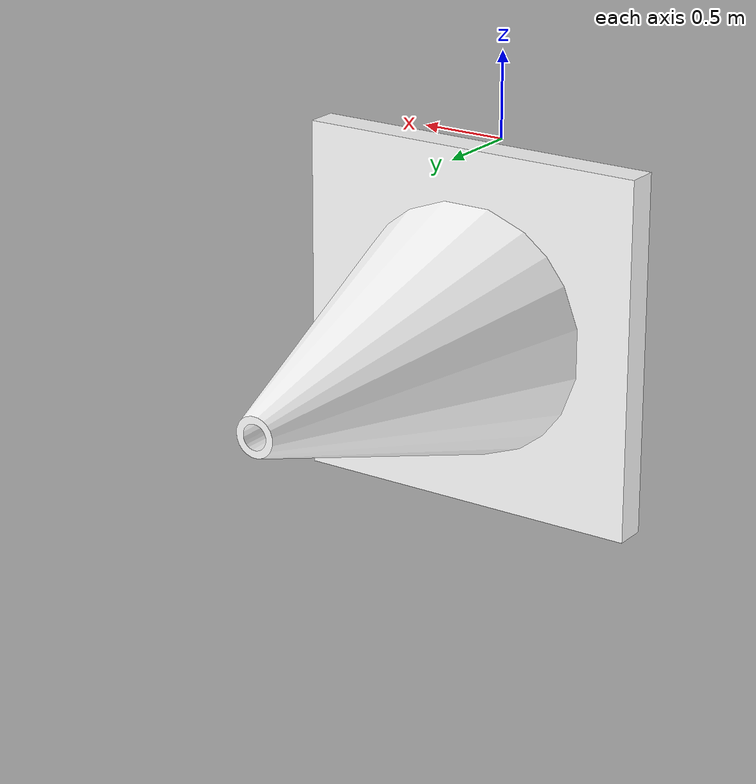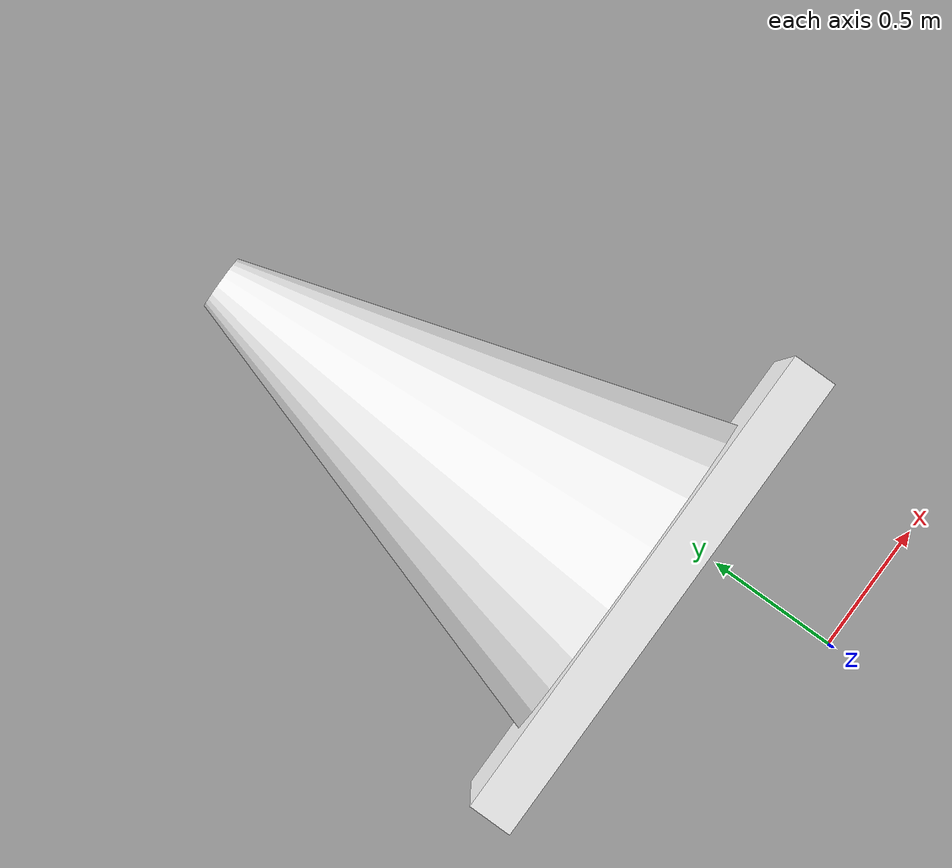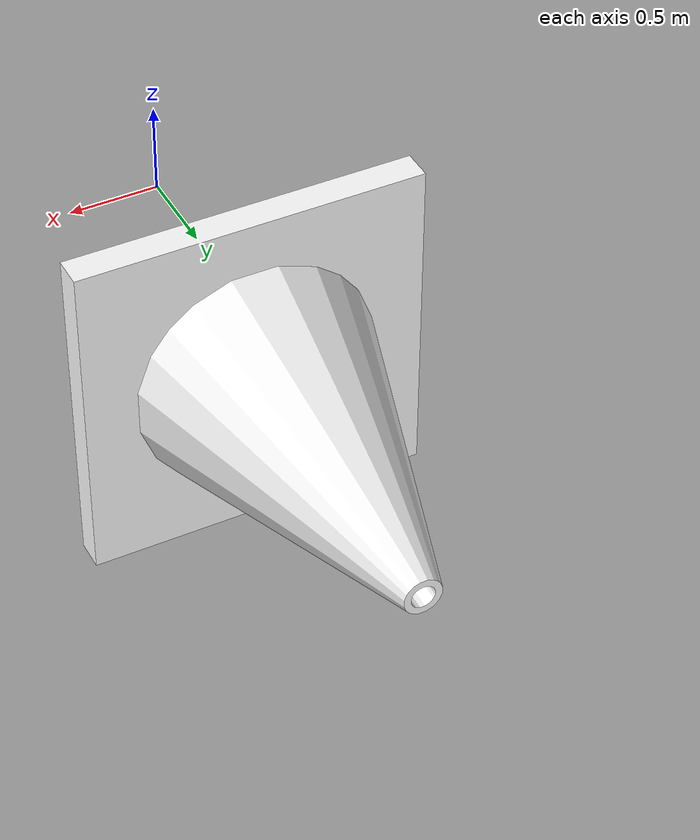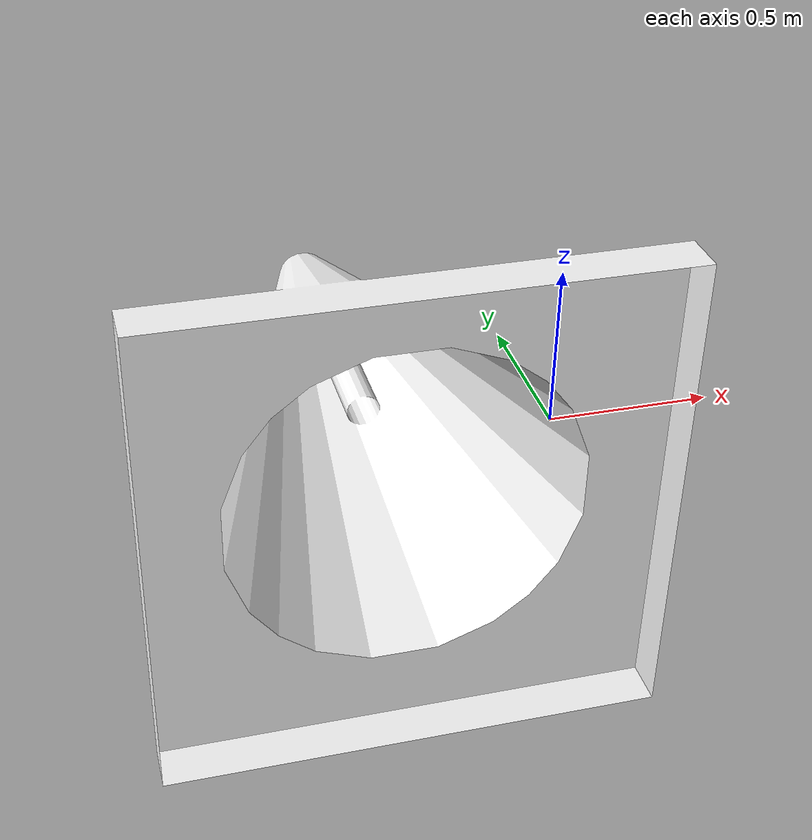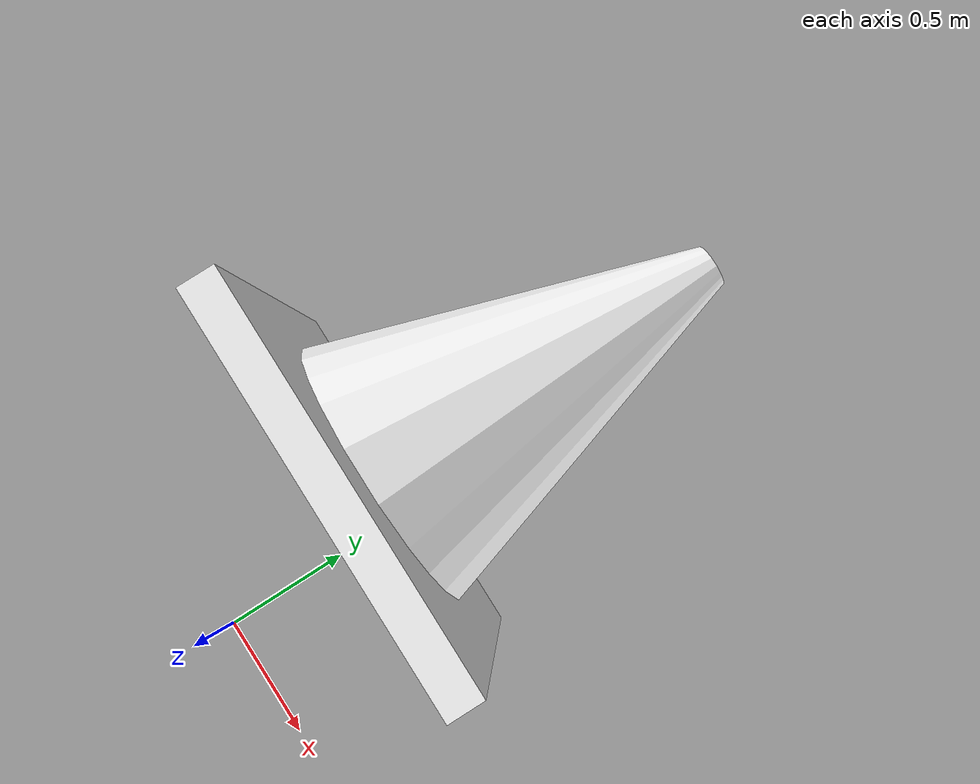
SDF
<?xml version="1.0" ?>
<sdf version="1.8">
    <world name="start_world">

        <plugin
            filename="libignition-gazebo-physics-system.so"
            name="ignition::gazebo::systems::Physics">
        </plugin>
        <plugin
            filename="libignition-gazebo-user-commands-system.so"
            name="ignition::gazebo::systems::UserCommands">
        </plugin>
        <plugin
            filename="libignition-gazebo-scene-broadcaster-system.so"
            name="ignition::gazebo::systems::SceneBroadcaster">
        </plugin>

        <gui fullscreen="0">

            <!-- 3D scene -->
            <plugin filename="GzScene3D" name="3D View">
                <ignition-gui>
                    <title>3D View</title>
                    <property type="bool" key="showTitleBar">false</property>
                    <property type="string" key="state">docked</property>
                </ignition-gui>

                <engine>ogre2</engine>
                <scene>scene</scene>
                <ambient_light>1.0 1.0 1.0</ambient_light>
                <background_color>0.8 0.8 0.8</background_color>
                <camera_pose>-6 0 6 0 0.5 0</camera_pose>
            </plugin>

            <plugin filename="WorldControl" name="World control">
                <ignition-gui>
                    <title>World control</title>
                    <property type="bool" key="showTitleBar">false</property>
                    <property type="bool" key="resizable">false</property>
                    <property type="double" key="height">72</property>
                    <property type="double" key="width">121</property>
                    <property type="double" key="z">1</property>
                    <property type="string" key="state">floating</property>
                    <anchors target="3D View">
                    <line own="left" target="left"/>
                    <line own="bottom" target="bottom"/>
                    </anchors>
                </ignition-gui>
                <play_pause>true</play_pause>
                <step>true</step>
                <start_paused>true</start_paused>
                <service>/world/world_demo/control</service>
                <stats_topic>/world/world_demo/stats</stats_topic>
            </plugin>

            <!-- World statistics -->
            <plugin filename="WorldStats" name="World stats">
                <ignition-gui>
                    <title>World stats</title>
                    <property type="bool" key="showTitleBar">false</property>
                    <property type="bool" key="resizable">false</property>
                    <property type="double" key="height">110</property>
                    <property type="double" key="width">290</property>
                    <property type="double" key="z">1</property>
                    <property type="string" key="state">floating</property>
                    <anchors target="3D View">
                    <line own="right" target="right"/>
                    <line own="bottom" target="bottom"/>
                    </anchors>
                </ignition-gui>
                <sim_time>true</sim_time>
                <real_time>true</real_time>
                <real_time_factor>true</real_time_factor>
                <iterations>true</iterations>
                <topic>/world/world_demo/stats</topic>
            </plugin>

            <light type="directional" name="sun">
                <cast_shadows>true</cast_shadows>
                <pose>0 0 10 0 0 0</pose>
                <diffuse>0.8 0.8 0.8 1</diffuse>
                <specular>0.2 0.2 0.2 1</specular>
                <attenuation>
                <range>1000</range>
                <constant>0.9</constant>
                <linear>0.01</linear>
                <quadratic>0.001</quadratic>
                </attenuation>
                <direction>-0.5 0.1 -0.9</direction>
            </light>

            <physics type='ode'>
                <max_step_size>0.001</max_step_size>
                <real_time_factor>1</real_time_factor>
                <real_time_update_rate>1000</real_time_update_rate>
            </physics>

        </gui>

        <include>
            <uri>model://model</uri>
        </include>

    </world>
</sdf>

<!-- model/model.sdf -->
<sdf version="1.7">
  <model name="model">
    <static>true</static>
    <link name="link">
      <visual name="visual">
        <geometry>
          <mesh>
            <uri>model://model/meshes/trafficcone.dae</uri>
          </mesh>
        </geometry>
      </visual>
      <collision name="collision">
        <geometry>
          <mesh>
            <uri>model://model/meshes/trafficcone.dae</uri>
          </mesh>
        </geometry>
      </collision>
    </link>
  </model>
</sdf>
